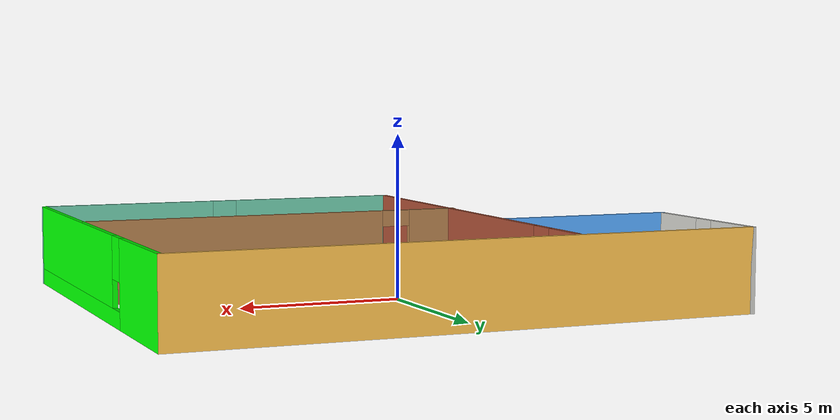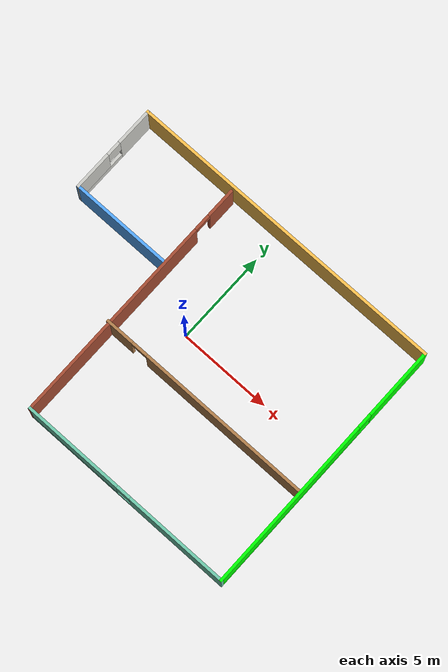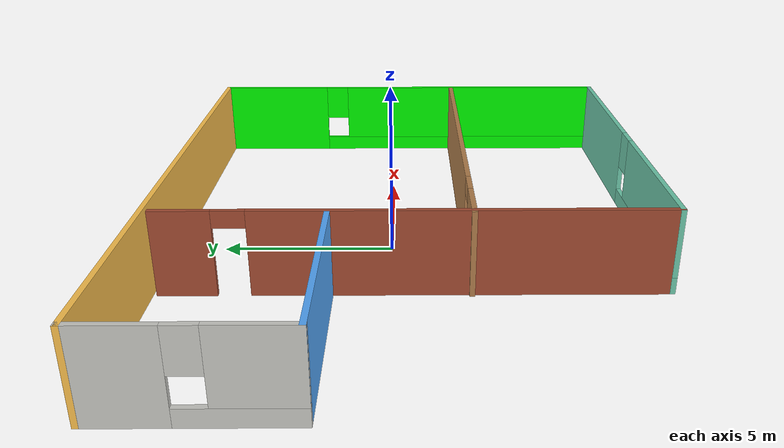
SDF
<?xml version='1.0'?>
<sdf version='1.6'>
  <model name='new_world'>
    <pose frame=''>0.452312 -0.573113 0 0 -0 0</pose>
    <link name='Wall_13'>
      <pose frame=''>-3.175 -0.125 0 0 -0 1.5708</pose>
      <visual name='Wall_13_Visual_0'>
        <pose frame=''>-1.27254 0 1.25 0 -0 0</pose>
        <geometry>
          <box>
            <size>11.4549 0.15 2.5</size>
          </box>
        </geometry>
        <material>
          <script>
            <uri>file://media/materials/scripts/gazebo.material</uri>
            <name>Gazebo/Bricks</name>
          </script>
          <ambient>1 1 1 1</ambient>
        </material>
        <meta>
          <layer>0</layer>
        </meta>
      </visual>
      <collision name='Wall_13_Collision_0'>
        <geometry>
          <box>
            <size>11.4549 0.15 2.5</size>
          </box>
        </geometry>
        <pose frame=''>-1.27254 0 1.25 0 -0 0</pose>
      </collision>
      <visual name='Wall_13_Visual_1'>
        <pose frame=''>6.17746 0 1.25 0 -0 0</pose>
        <geometry>
          <box>
            <size>1.64508 0.15 2.5</size>
          </box>
        </geometry>
        <material>
          <script>
            <uri>file://media/materials/scripts/gazebo.material</uri>
            <name>Gazebo/Bricks</name>
          </script>
          <ambient>1 1 1 1</ambient>
        </material>
        <meta>
          <layer>0</layer>
        </meta>
      </visual>
      <collision name='Wall_13_Collision_1'>
        <geometry>
          <box>
            <size>1.64508 0.15 2.5</size>
          </box>
        </geometry>
        <pose frame=''>6.17746 0 1.25 0 -0 0</pose>
      </collision>
      <visual name='Wall_13_Visual_2'>
        <pose frame=''>4.90492 0 2.25 0 -0 0</pose>
        <geometry>
          <box>
            <size>0.9 0.15 0.5</size>
          </box>
        </geometry>
        <material>
          <script>
            <uri>file://media/materials/scripts/gazebo.material</uri>
            <name>Gazebo/Bricks</name>
          </script>
          <ambient>1 1 1 1</ambient>
        </material>
        <meta>
          <layer>0</layer>
        </meta>
      </visual>
      <collision name='Wall_13_Collision_2'>
        <geometry>
          <box>
            <size>0.9 0.15 0.5</size>
          </box>
        </geometry>
        <pose frame=''>4.90492 0 2.25 0 -0 0</pose>
      </collision>
    </link>
    <link name='Wall_15'>
      <pose frame=''>-8.675 4.625 0 0 0 -1.5708</pose>
      <visual name='Wall_15_Visual_0'>
        <pose frame=''>-1.4571 0 1.25 0 -0 0</pose>
        <geometry>
          <box>
            <size>2.0858 0.15 2.5</size>
          </box>
        </geometry>
        <material>
          <script>
            <uri>file://media/materials/scripts/gazebo.material</uri>
            <name>Gazebo/CeilingTiled</name>
          </script>
          <ambient>1 1 1 1</ambient>
        </material>
        <meta>
          <layer>0</layer>
        </meta>
      </visual>
      <collision name='Wall_15_Collision_0'>
        <geometry>
          <box>
            <size>2.0858 0.15 2.5</size>
          </box>
        </geometry>
        <pose frame=''>-1.4571 0 1.25 0 -0 0</pose>
      </collision>
      <visual name='Wall_15_Visual_1'>
        <pose frame=''>1.0429 0 0.25 0 -0 0</pose>
        <geometry>
          <box>
            <size>2.9142 0.15 0.5</size>
          </box>
        </geometry>
        <material>
          <script>
            <uri>file://media/materials/scripts/gazebo.material</uri>
            <name>Gazebo/CeilingTiled</name>
          </script>
          <ambient>1 1 1 1</ambient>
        </material>
        <meta>
          <layer>0</layer>
        </meta>
      </visual>
      <collision name='Wall_15_Collision_1'>
        <geometry>
          <box>
            <size>2.9142 0.15 0.5</size>
          </box>
        </geometry>
        <pose frame=''>1.0429 0 0.25 0 -0 0</pose>
      </collision>
      <visual name='Wall_15_Visual_2'>
        <pose frame=''>1.4429 0 1.5 0 -0 0</pose>
        <geometry>
          <box>
            <size>2.1142 0.15 2</size>
          </box>
        </geometry>
        <material>
          <script>
            <uri>file://media/materials/scripts/gazebo.material</uri>
            <name>Gazebo/CeilingTiled</name>
          </script>
          <ambient>1 1 1 1</ambient>
        </material>
        <meta>
          <layer>0</layer>
        </meta>
      </visual>
      <collision name='Wall_15_Collision_2'>
        <geometry>
          <box>
            <size>2.1142 0.15 2</size>
          </box>
        </geometry>
        <pose frame=''>1.4429 0 1.5 0 -0 0</pose>
      </collision>
      <visual name='Wall_15_Visual_3'>
        <pose frame=''>-0.014202 0 1.9 0 -0 0</pose>
        <geometry>
          <box>
            <size>0.8 0.15 1.2</size>
          </box>
        </geometry>
        <material>
          <script>
            <uri>file://media/materials/scripts/gazebo.material</uri>
            <name>Gazebo/CeilingTiled</name>
          </script>
          <ambient>1 1 1 1</ambient>
        </material>
        <meta>
          <layer>0</layer>
        </meta>
      </visual>
      <collision name='Wall_15_Collision_3'>
        <geometry>
          <box>
            <size>0.8 0.15 1.2</size>
          </box>
        </geometry>
        <pose frame=''>-0.014202 0 1.9 0 -0 0</pose>
      </collision>
    </link>
    <link name='Wall_16'>
      <collision name='Wall_16_Collision'>
        <geometry>
          <box>
            <size>5.5 0.15 2.5</size>
          </box>
        </geometry>
        <pose frame=''>0 0 1.25 0 -0 0</pose>
      </collision>
      <visual name='Wall_16_Visual'>
        <pose frame=''>0 0 1.25 0 -0 0</pose>
        <geometry>
          <box>
            <size>5.5 0.15 2.5</size>
          </box>
        </geometry>
        <material>
          <script>
            <uri>file://media/materials/scripts/gazebo.material</uri>
            <name>Gazebo/Grey</name>
          </script>
          <ambient>0.333333 0.666667 1 1</ambient>
        </material>
        <meta>
          <layer>0</layer>
        </meta>
      </visual>
      <pose frame=''>-6 2.2 0 0 -0 0</pose>
    </link>
    <link name='Wall_18'>
      <pose frame=''>2.66378 -1.62262 0 0 -0 0</pose>
      <visual name='Wall_18_Visual_0'>
        <pose frame=''>-5.20249 0 1.25 0 -0 0</pose>
        <geometry>
          <box>
            <size>1.59501 0.15 2.5</size>
          </box>
        </geometry>
        <material>
          <script>
            <uri>file://media/materials/scripts/gazebo.material</uri>
            <name>Gazebo/Wood</name>
          </script>
          <ambient>1 1 1 1</ambient>
        </material>
        <meta>
          <layer>0</layer>
        </meta>
      </visual>
      <collision name='Wall_18_Collision_0'>
        <geometry>
          <box>
            <size>1.59501 0.15 2.5</size>
          </box>
        </geometry>
        <pose frame=''>-5.20249 0 1.25 0 -0 0</pose>
      </collision>
      <visual name='Wall_18_Visual_1'>
        <pose frame=''>1.24751 0 1.25 0 -0 0</pose>
        <geometry>
          <box>
            <size>9.50499 0.15 2.5</size>
          </box>
        </geometry>
        <material>
          <script>
            <uri>file://media/materials/scripts/gazebo.material</uri>
            <name>Gazebo/Wood</name>
          </script>
          <ambient>1 1 1 1</ambient>
        </material>
        <meta>
          <layer>0</layer>
        </meta>
      </visual>
      <collision name='Wall_18_Collision_1'>
        <geometry>
          <box>
            <size>9.50499 0.15 2.5</size>
          </box>
        </geometry>
        <pose frame=''>1.24751 0 1.25 0 -0 0</pose>
      </collision>
      <visual name='Wall_18_Visual_2'>
        <pose frame=''>-3.95499 0 2.25 0 -0 0</pose>
        <geometry>
          <box>
            <size>0.9 0.15 0.5</size>
          </box>
        </geometry>
        <material>
          <script>
            <uri>file://media/materials/scripts/gazebo.material</uri>
            <name>Gazebo/Wood</name>
          </script>
          <ambient>1 1 1 1</ambient>
        </material>
        <meta>
          <layer>0</layer>
        </meta>
      </visual>
      <collision name='Wall_18_Collision_2'>
        <geometry>
          <box>
            <size>0.9 0.15 0.5</size>
          </box>
        </geometry>
        <pose frame=''>-3.95499 0 2.25 0 -0 0</pose>
      </collision>
    </link>
    <link name='Wall_3'>
      <collision name='Wall_3_Collision'>
        <geometry>
          <box>
            <size>17.5 0.15 2.5</size>
          </box>
        </geometry>
        <pose frame=''>0 0 1.25 0 -0 0</pose>
      </collision>
      <visual name='Wall_3_Visual'>
        <pose frame=''>0 0 1.25 0 -0 0</pose>
        <geometry>
          <box>
            <size>17.5 0.15 2.5</size>
          </box>
        </geometry>
        <material>
          <script>
            <uri>file://media/materials/scripts/gazebo.material</uri>
            <name>Gazebo/Grey</name>
          </script>
          <ambient>1 0.764706 0.305882 1</ambient>
        </material>
        <meta>
          <layer>0</layer>
        </meta>
      </visual>
      <pose frame=''>0 7.05 0 0 -0 0</pose>
    </link>
    <link name='Wall_4'>
      <pose frame=''>8.675 0 0 0 0 -1.5708</pose>
      <visual name='Wall_4_Visual_0'>
        <pose frame=''>-5.16745 0 1.25 0 -0 0</pose>
        <geometry>
          <box>
            <size>3.91509 0.15 2.5</size>
          </box>
        </geometry>
        <material>
          <script>
            <uri>file://media/materials/scripts/gazebo.material</uri>
            <name>Gazebo/Grey</name>
          </script>
          <ambient>0 1 0 1</ambient>
        </material>
        <meta>
          <layer>0</layer>
        </meta>
      </visual>
      <collision name='Wall_4_Collision_0'>
        <geometry>
          <box>
            <size>3.91509 0.15 2.5</size>
          </box>
        </geometry>
        <pose frame=''>-5.16745 0 1.25 0 -0 0</pose>
      </collision>
      <visual name='Wall_4_Visual_1'>
        <pose frame=''>1.95755 0 0.25 0 -0 0</pose>
        <geometry>
          <box>
            <size>10.3349 0.15 0.5</size>
          </box>
        </geometry>
        <material>
          <script>
            <uri>file://media/materials/scripts/gazebo.material</uri>
            <name>Gazebo/Grey</name>
          </script>
          <ambient>0 1 0 1</ambient>
        </material>
        <meta>
          <layer>0</layer>
        </meta>
      </visual>
      <collision name='Wall_4_Collision_1'>
        <geometry>
          <box>
            <size>10.3349 0.15 0.5</size>
          </box>
        </geometry>
        <pose frame=''>1.95755 0 0.25 0 -0 0</pose>
      </collision>
      <visual name='Wall_4_Visual_2'>
        <pose frame=''>2.35755 0 1.5 0 -0 0</pose>
        <geometry>
          <box>
            <size>9.53491 0.15 2</size>
          </box>
        </geometry>
        <material>
          <script>
            <uri>file://media/materials/scripts/gazebo.material</uri>
            <name>Gazebo/Grey</name>
          </script>
          <ambient>0 1 0 1</ambient>
        </material>
        <meta>
          <layer>0</layer>
        </meta>
      </visual>
      <collision name='Wall_4_Collision_2'>
        <geometry>
          <box>
            <size>9.53491 0.15 2</size>
          </box>
        </geometry>
        <pose frame=''>2.35755 0 1.5 0 -0 0</pose>
      </collision>
      <visual name='Wall_4_Visual_3'>
        <pose frame=''>-2.80991 0 1.9 0 -0 0</pose>
        <geometry>
          <box>
            <size>0.8 0.15 1.2</size>
          </box>
        </geometry>
        <material>
          <script>
            <uri>file://media/materials/scripts/gazebo.material</uri>
            <name>Gazebo/Grey</name>
          </script>
          <ambient>0 1 0 1</ambient>
        </material>
        <meta>
          <layer>0</layer>
        </meta>
      </visual>
      <collision name='Wall_4_Collision_3'>
        <geometry>
          <box>
            <size>0.8 0.15 1.2</size>
          </box>
        </geometry>
        <pose frame=''>-2.80991 0 1.9 0 -0 0</pose>
      </collision>
    </link>
    <link name='Wall_5'>
      <pose frame=''>2.75 -7.05 0 0 -0 3.14159</pose>
      <visual name='Wall_5_Visual_0'>
        <pose frame=''>-3.14941 0 1.25 0 -0 0</pose>
        <geometry>
          <box>
            <size>5.70118 0.15 2.5</size>
          </box>
        </geometry>
        <material>
          <script>
            <uri>file://media/materials/scripts/gazebo.material</uri>
            <name>Gazebo/Grey</name>
          </script>
          <ambient>0.435294 0.796078 0.67451 1</ambient>
        </material>
        <meta>
          <layer>0</layer>
        </meta>
      </visual>
      <collision name='Wall_5_Collision_0'>
        <geometry>
          <box>
            <size>5.70118 0.15 2.5</size>
          </box>
        </geometry>
        <pose frame=''>-3.14941 0 1.25 0 -0 0</pose>
      </collision>
      <visual name='Wall_5_Visual_1'>
        <pose frame=''>2.85059 0 0.25 0 -0 0</pose>
        <geometry>
          <box>
            <size>6.29882 0.15 0.5</size>
          </box>
        </geometry>
        <material>
          <script>
            <uri>file://media/materials/scripts/gazebo.material</uri>
            <name>Gazebo/Grey</name>
          </script>
          <ambient>0.435294 0.796078 0.67451 1</ambient>
        </material>
        <meta>
          <layer>0</layer>
        </meta>
      </visual>
      <collision name='Wall_5_Collision_1'>
        <geometry>
          <box>
            <size>6.29882 0.15 0.5</size>
          </box>
        </geometry>
        <pose frame=''>2.85059 0 0.25 0 -0 0</pose>
      </collision>
      <visual name='Wall_5_Visual_2'>
        <pose frame=''>3.25059 0 1.5 0 -0 0</pose>
        <geometry>
          <box>
            <size>5.49882 0.15 2</size>
          </box>
        </geometry>
        <material>
          <script>
            <uri>file://media/materials/scripts/gazebo.material</uri>
            <name>Gazebo/Grey</name>
          </script>
          <ambient>0.435294 0.796078 0.67451 1</ambient>
        </material>
        <meta>
          <layer>0</layer>
        </meta>
      </visual>
      <collision name='Wall_5_Collision_2'>
        <geometry>
          <box>
            <size>5.49882 0.15 2</size>
          </box>
        </geometry>
        <pose frame=''>3.25059 0 1.5 0 -0 0</pose>
      </collision>
      <visual name='Wall_5_Visual_3'>
        <pose frame=''>0.101184 0 1.9 0 -0 0</pose>
        <geometry>
          <box>
            <size>0.8 0.15 1.2</size>
          </box>
        </geometry>
        <material>
          <script>
            <uri>file://media/materials/scripts/gazebo.material</uri>
            <name>Gazebo/Grey</name>
          </script>
          <ambient>0.435294 0.796078 0.67451 1</ambient>
        </material>
        <meta>
          <layer>0</layer>
        </meta>
      </visual>
      <collision name='Wall_5_Collision_3'>
        <geometry>
          <box>
            <size>0.8 0.15 1.2</size>
          </box>
        </geometry>
        <pose frame=''>0.101184 0 1.9 0 -0 0</pose>
      </collision>
    </link>
    <static>1</static>
  </model>
</sdf>
